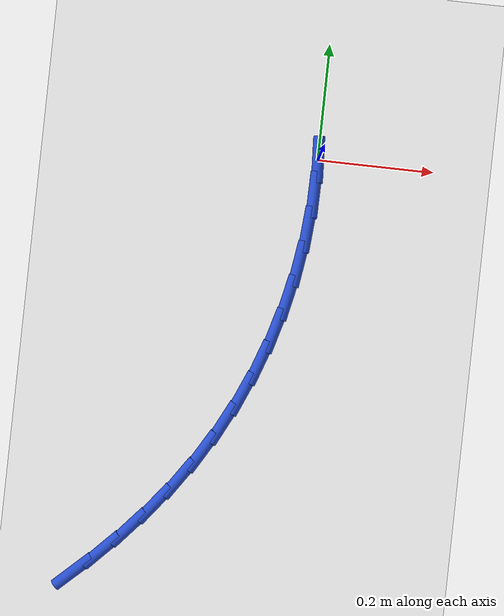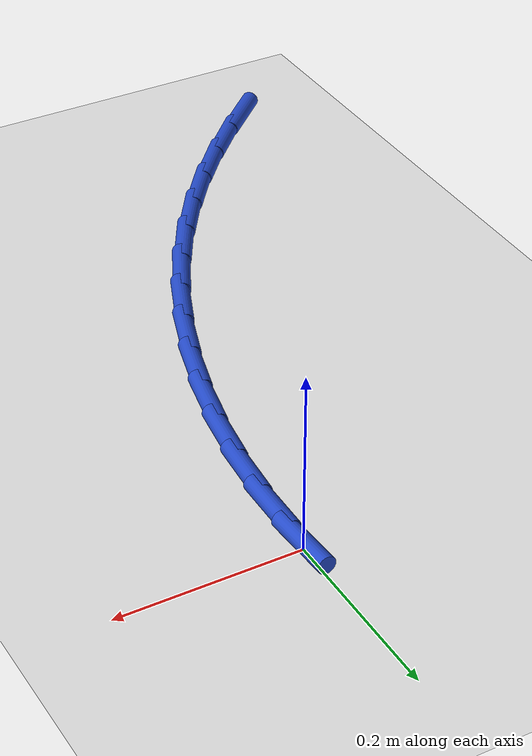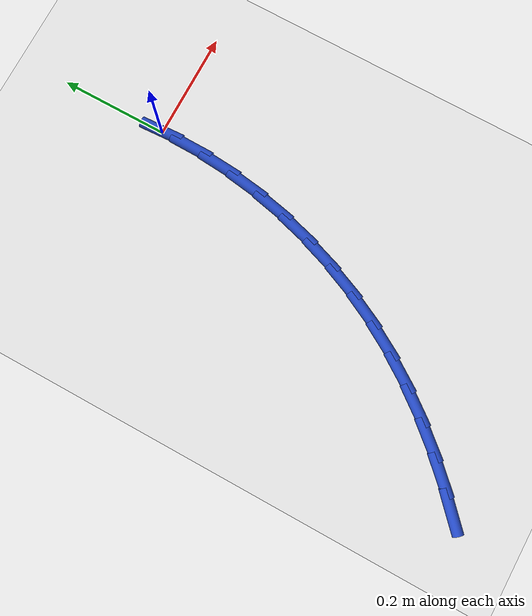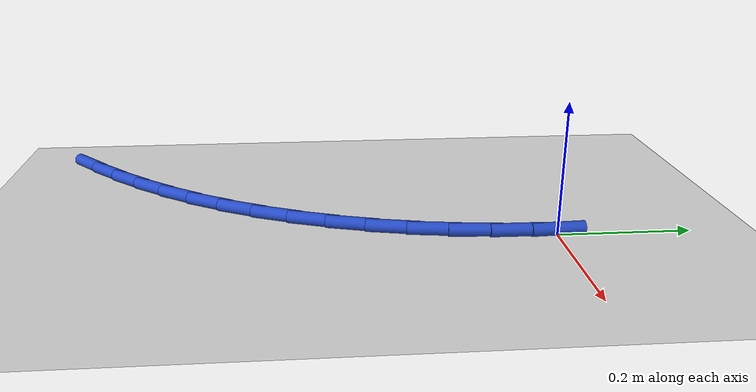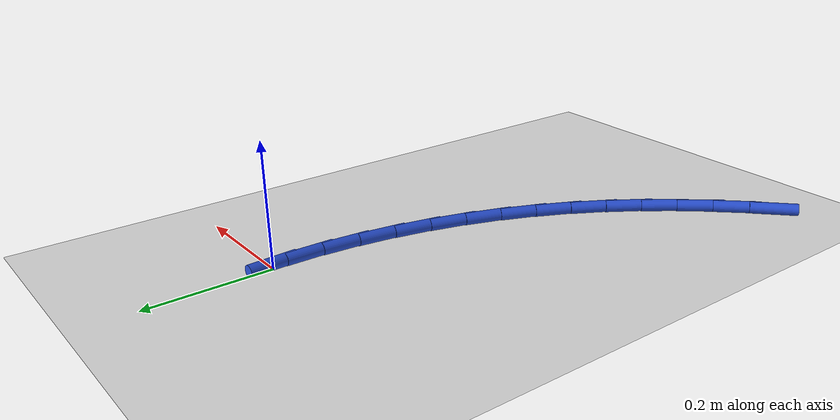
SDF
<sdf version="1.6">
 <world name="default">
  <model name="ground_plane">
   <static>1</static>
   <link name="link">
    <collision name="collision">
     <geometry><plane><normal>0 0 1</normal><size>100 100</size></plane></geometry>
     <surface><friction><ode><mu>100</mu><mu2>50</mu2></ode></friction></surface>
    </collision>
    <visual name="visual">
     <cast_shadows>0</cast_shadows>
     <geometry><plane><normal>0 0 1</normal><size>100 100</size></plane></geometry>
     <material>
      <script><uri>file://media/materials/scripts/gazebo.material</uri><name>Gazebo/WhiteGlow</name></script>
     </material>
    </visual>
   </link>
  </model>
  <model name="line">
   <link name="link_0">
    <pose>-2.7755575615628914e-17 4.163336342344337e-17 0.01 0 1.57 -1.5181119346813343</pose>
    <collision name="collision">
     <geometry><cylinder><radius>0.01</radius><length>0.08</length></cylinder></geometry>
    </collision>
    <visual name="visual">
     <material>
      <script><name>Gazebo/Blue</name><uri>file://media/materials/scripts/gazebo.material</uri></script>
     </material>
     <geometry><cylinder><radius>0.01</radius><length>0.08</length></cylinder></geometry>
    </visual>
   </link>
   <link name="link_106">
    <pose>-0.3415295307150408 -0.7441910027929441 0.01 0 1.57 0.7491852746747025</pose>
    <collision name="collision">
     <geometry><cylinder><radius>0.01</radius><length>0.08</length></cylinder></geometry>
    </collision>
    <visual name="visual">
     <material>
      <script><name>Gazebo/Blue</name><uri>file://media/materials/scripts/gazebo.material</uri></script>
     </material>
     <geometry><cylinder><radius>0.01</radius><length>0.08</length></cylinder></geometry>
    </visual>
   </link>
   <link name="link_107">
    <pose>-0.2973228546881512 -0.7030754427277013 0.01 0 1.57 0.798786559528212</pose>
    <collision name="collision">
     <geometry><cylinder><radius>0.01</radius><length>0.08</length></cylinder></geometry>
    </collision>
    <visual name="visual">
     <material>
      <script><name>Gazebo/Blue</name><uri>file://media/materials/scripts/gazebo.material</uri></script>
     </material>
     <geometry><cylinder><radius>0.01</radius><length>0.08</length></cylinder></geometry>
    </visual>
   </link>
   <link name="link_108">
    <pose>-0.2552337749546002 -0.6598439896454242 0.01 0 1.57 0.8522987617840773</pose>
    <collision name="collision">
     <geometry><cylinder><radius>0.01</radius><length>0.08</length></cylinder></geometry>
    </collision>
    <visual name="visual">
     <material>
      <script><name>Gazebo/Blue</name><uri>file://media/materials/scripts/gazebo.material</uri></script>
     </material>
     <geometry><cylinder><radius>0.01</radius><length>0.08</length></cylinder></geometry>
    </visual>
   </link>
   <link name="link_109">
    <pose>-0.21556200111571708 -0.6144743942162565 0.01 0 1.57 0.9099237226026583</pose>
    <collision name="collision">
     <geometry><cylinder><radius>0.01</radius><length>0.08</length></cylinder></geometry>
    </collision>
    <visual name="visual">
     <material>
      <script><name>Gazebo/Blue</name><uri>file://media/materials/scripts/gazebo.material</uri></script>
     </material>
     <geometry><cylinder><radius>0.01</radius><length>0.08</length></cylinder></geometry>
    </visual>
   </link>
   <link name="link_110">
    <pose>-0.1786072427728293 -0.5669444071103393 0.01 0 1.57 0.9717863800648319</pose>
    <collision name="collision">
     <geometry><cylinder><radius>0.01</radius><length>0.08</length></cylinder></geometry>
    </collision>
    <visual name="visual">
     <material>
      <script><name>Gazebo/Blue</name><uri>file://media/materials/scripts/gazebo.material</uri></script>
     </material>
     <geometry><cylinder><radius>0.01</radius><length>0.08</length></cylinder></geometry>
    </visual>
   </link>
   <link name="link_111">
    <pose>-0.14466920952726495 -0.5172317789978149 0.01 0 1.57 1.0376232614760543</pose>
    <collision name="collision">
     <geometry><cylinder><radius>0.01</radius><length>0.08</length></cylinder></geometry>
    </collision>
    <visual name="visual">
     <material>
      <script><name>Gazebo/Blue</name><uri>file://media/materials/scripts/gazebo.material</uri></script>
     </material>
     <geometry><cylinder><radius>0.01</radius><length>0.08</length></cylinder></geometry>
    </visual>
   </link>
   <link name="link_112">
    <pose>-0.11403664402458993 -0.4653286570808439 0.01 0 1.57 1.1041661718304305</pose>
    <collision name="collision">
     <geometry><cylinder><radius>0.01</radius><length>0.08</length></cylinder></geometry>
    </collision>
    <visual name="visual">
     <material>
      <script><name>Gazebo/Blue</name><uri>file://media/materials/scripts/gazebo.material</uri></script>
     </material>
     <geometry><cylinder><radius>0.01</radius><length>0.08</length></cylinder></geometry>
    </visual>
   </link>
   <link name="link_113">
    <pose>-0.08686924167405527 -0.4113965913302306 0.01 0 1.57 1.1695549220319688</pose>
    <collision name="collision">
     <geometry><cylinder><radius>0.01</radius><length>0.08</length></cylinder></geometry>
    </collision>
    <visual name="visual">
     <material>
      <script><name>Gazebo/Blue</name><uri>file://media/materials/scripts/gazebo.material</uri></script>
     </material>
     <geometry><cylinder><radius>0.01</radius><length>0.08</length></cylinder></geometry>
    </visual>
   </link>
   <link name="link_114">
    <pose>-0.06324269656744536 -0.355707401848509 0.01 0 1.57 1.2341057094637662</pose>
    <collision name="collision">
     <geometry><cylinder><radius>0.01</radius><length>0.08</length></cylinder></geometry>
    </collision>
    <visual name="visual">
     <material>
      <script><name>Gazebo/Blue</name><uri>file://media/materials/scripts/gazebo.material</uri></script>
     </material>
     <geometry><cylinder><radius>0.01</radius><length>0.08</length></cylinder></geometry>
    </visual>
   </link>
   <link name="link_115">
    <pose>-0.0432312689181491 -0.29853479101773367 0.01 0 1.57 1.2981847860442783</pose>
    <collision name="collision">
     <geometry><cylinder><radius>0.01</radius><length>0.08</length></cylinder></geometry>
    </collision>
    <visual name="visual">
     <material>
      <script><name>Gazebo/Blue</name><uri>file://media/materials/scripts/gazebo.material</uri></script>
     </material>
     <geometry><cylinder><radius>0.01</radius><length>0.08</length></cylinder></geometry>
    </visual>
   </link>
   <link name="link_116">
    <pose>-0.026909218939556265 -0.24015246121996134 0.01 0 1.57 1.3621649063875803</pose>
    <collision name="collision">
     <geometry><cylinder><radius>0.01</radius><length>0.08</length></cylinder></geometry>
    </collision>
    <visual name="visual">
     <material>
      <script><name>Gazebo/Blue</name><uri>file://media/materials/scripts/gazebo.material</uri></script>
     </material>
     <geometry><cylinder><radius>0.01</radius><length>0.08</length></cylinder></geometry>
    </visual>
   </link>
   <link name="link_117">
    <pose>-0.014350806845055747 -0.18083411483724668 0.01 0 1.57 1.4264191693600379</pose>
    <collision name="collision">
     <geometry><cylinder><radius>0.01</radius><length>0.08</length></cylinder></geometry>
    </collision>
    <visual name="visual">
     <material>
      <script><name>Gazebo/Blue</name><uri>file://media/materials/scripts/gazebo.material</uri></script>
     </material>
     <geometry><cylinder><radius>0.01</radius><length>0.08</length></cylinder></geometry>
    </visual>
   </link>
   <link name="link_118">
    <pose>-0.005630292848036737 -0.12085345425164484 0.01 0 1.57 1.4913150609386434</pose>
    <collision name="collision">
     <geometry><cylinder><radius>0.01</radius><length>0.08</length></cylinder></geometry>
    </collision>
    <visual name="visual">
     <material>
      <script><name>Gazebo/Blue</name><uri>file://media/materials/scripts/gazebo.material</uri></script>
     </material>
     <geometry><cylinder><radius>0.01</radius><length>0.08</length></cylinder></geometry>
    </visual>
   </link>
   <link name="link_119">
    <pose>-0.0008219371618883725 -0.060484181845210205 0.01 0 1.57 1.5572078719786604</pose>
    <collision name="collision">
     <geometry><cylinder><radius>0.01</radius><length>0.08</length></cylinder></geometry>
    </collision>
    <visual name="visual">
     <material>
      <script><name>Gazebo/Blue</name><uri>file://media/materials/scripts/gazebo.material</uri></script>
     </material>
     <geometry><cylinder><radius>0.01</radius><length>0.08</length></cylinder></geometry>
    </visual>
   </link>
  </model>
 </world>
</sdf>
